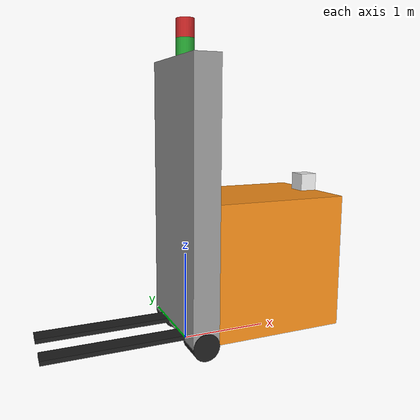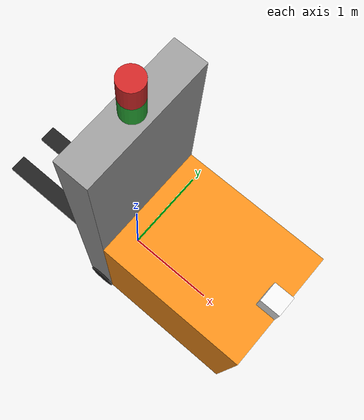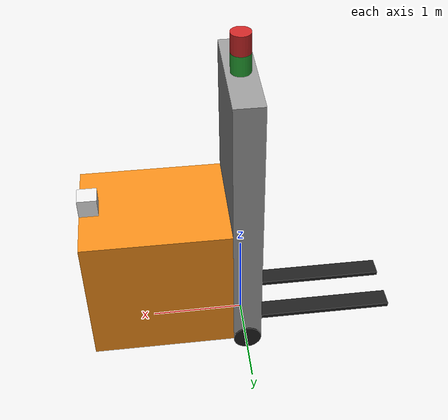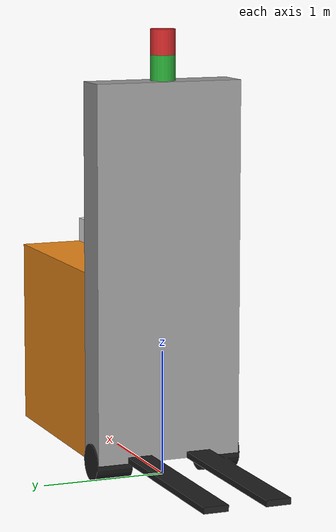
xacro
<?xml version="1.0"?>
<robot name="agv" xmlns:xacro="http://www.ros.org/wiki/xacro">

    <!-- Constants for robot dimensions -->
    <xacro:property name="PI" value="3.1415926535897931"/>
    <xacro:property name="chassis_x" value="1.5" /> <!-- length=1.5 meters -->
    <xacro:property name="chassis_y" value="1.2" /> <!-- width=1.2 meters -->
    <xacro:property name="chassis_z" value="1.5" /> <!-- height=1.5 meters-->

    <xacro:property name="mast_x" value="0.3" /> <!-- length=0.3 meters -->
    <xacro:property name="mast_z" value="3.0" /> <!-- height=3.0 meters-->

    <xacro:property name="fork_x" value="1.5" /> <!-- length=1.5 meters-->
    <xacro:property name="fork_y" value="0.2" /> <!-- width=0.2 meters-->
    <xacro:property name="fork_z" value="0.05" /> <!-- height=0.05 meters-->
    <xacro:property name="fork_y_offset" value="0.15" /> <!-- offset from center=0.15 meters-->

    <xacro:property name="wheel_rad" value="0.15" /> <!-- radius=0.15 meters-->
    <xacro:property name="wheel_len" value="0.30" /> <!-- length=0.30 meters-->

    <xacro:property name="chassis_mass" value="100" /> <!-- mass=100 kg-->
    <xacro:property name="wheel_mass" value="1" /> <!-- mass=1 kg-->

    <!-- Include other xacro files-->
    <xacro:include filename="$(find factorybot)/robot/materials.xacro" />
    <xacro:include filename="$(find factorybot)/robot/agv.gazebo.xarco" />

    <!-- Setup some useful xacro macros-->
    <xacro:macro name="visual_collision_template" params="x y z material *shape">
        <visual>
        <origin xyz="${x} ${y} ${z}" rpy="0 0 0"/>
        <geometry>
            <xacro:insert_block name="shape" />
        </geometry>
        <material name="${material}"/>
        </visual>

        <collision>
        <origin xyz="${x} ${y} ${z}" rpy="0 0 0"/>
        <geometry>
            <xacro:insert_block name="shape" />
        </geometry>
        </collision>
    </xacro:macro>
    <xacro:macro name="wheel_template" params="name x y rad length mass">
        <joint name="chassis_${name}_joint" type="continuous">
            <parent link="chassis"/>
            <child link="${name}"/>
            <origin xyz="${x} ${y} 0.0" rpy="${-PI/2} 0 0"/>
            <axis xyz="0 0 1"/>
        </joint>

        <link name="${name}">
            <xacro:visual_collision_template x="0.0" y="0.0" z="0.0" material="black">
                <cylinder radius="${rad}" length="${length}" />
            </xacro:visual_collision_template>

            <inertial>
            <origin xyz="0 0 0" rpy="0 0 0"/>
            <mass value="${mass}"/>
            <!-- Cylinder: Izz=(1/2)*m*r^2, Ixx=Iyy=(1/12)*m*(3*r^2+h^2)-->
            <inertia ixx="${(1/12)*mass*(3*pow(rad,2)+pow(length,2))}" ixy="0" ixz="0"
                    iyy="${(1/12)*mass*(3*pow(rad,2)+pow(length,2))}" iyz="0"
                    izz="${.5*mass*pow(rad,2)}" />
            </inertial>
        </link>
    </xacro:macro>

    <!-- AGV Description Starts -->
    <link name="agv_CoordSys"/>
    <joint name="base_chassis_joint" type="fixed">
        <parent link="agv_CoordSys"/>
        <child link="chassis"/>
        <origin xyz="0.0 0.0 ${wheel_rad}" rpy="0 0 0"/>
    </joint>

    <!-- AGV Chassis -->
    <link name="chassis">
        <!-- Box representing AGV body which contains battery, electronics, etc. -->
        <xacro:visual_collision_template x="0.0" y="0.0" z="${mast_z/2}" material="grey">
            <box size="${mast_x} ${chassis_y} ${mast_z}"/>
        </xacro:visual_collision_template>

        <!-- Box representing AGV mast -->
        <xacro:visual_collision_template x="${(mast_x+chassis_x)/2}" y="0.0" z="${chassis_z/2}" material="orange">
            <box size="${chassis_x} ${chassis_y} ${chassis_z}"/>
        </xacro:visual_collision_template>

        <!-- Box representing AGV forks -->
        <xacro:visual_collision_template x="${-(mast_x+fork_x)/2}" y="${fork_y_offset+fork_y/2}" z="${fork_z/2}" material="black">
            <box size="${fork_x} ${fork_y} ${fork_z}"/>
        </xacro:visual_collision_template>
        <xacro:visual_collision_template x="${-(mast_x+fork_x)/2}" y="${-(fork_y_offset+fork_y/2)}" z="${fork_z/2}" material="black">
            <box size="${fork_x} ${fork_y} ${fork_z}"/>
        </xacro:visual_collision_template>

        <inertial>
        <origin xyz="0 0 0" rpy="0 0 0"/>
        <mass value="${chassis_mass}"/>
        <inertia ixx="60" ixy="0" ixz="0"
                iyy="60" iyz="0"
                izz="60" />
        </inertial>
    </link>

    <!-- AGV Wheels -->
    <xacro:wheel_template name="wheelL" x="0" y="${(chassis_y-wheel_len)/2+.01}" rad="${wheel_rad}" length="${wheel_len}" mass="${wheel_mass}"/>
    <xacro:wheel_template name="wheelR" x="0" y="${-(chassis_y-wheel_len)/2-.01}" rad="${wheel_rad}" length="${wheel_len}" mass="${wheel_mass}"/>
    <xacro:wheel_template name="wheelC" x="${chassis_x}" y="0" rad="${wheel_rad}" length="${wheel_len}" mass="${wheel_mass}"/>

    <!-- AGV Lidar3D Sensor -->
    <joint name="chassis_lidar3D_joint" type="fixed">
        <parent link="chassis"/>
        <child link="lidar3D"/>
        <origin xyz="0.0 0.0 ${mast_z+.1}" rpy="0 0 0"/>
    </joint>
    <link name="lidar3D">
        <xacro:visual_collision_template x="0.0" y="0.0" z="0.0" material="green">
            <cylinder radius="0.1" length="0.2" />
        </xacro:visual_collision_template>
    </link>

    <!-- AGV Lidar2D Sensor -->
    <joint name="chassis_lidar2D_joint" type="fixed">
        <parent link="chassis"/>
        <child link="lidar2D"/>
        <origin xyz="0.0 0.0 ${mast_z+.3}" rpy="0 0 0"/>
    </joint>
    <link name="lidar2D">
        <xacro:visual_collision_template x="0.0" y="0.0" z="0.0" material="red">
            <cylinder radius="0.1" length="0.2" />
        </xacro:visual_collision_template>
    </link>

    <!-- AGV Camera Sensor -->
    <joint name="chassis_camera_joint" type="fixed">
        <parent link="chassis"/>
        <child link="camera"/>
        <origin xyz="${chassis_x+mast_x/2-.1} 0.0 ${chassis_z+.1}" rpy="0 0 0"/>
    </joint>
    <link name="camera">
        <xacro:visual_collision_template x="0.0" y="0.0" z="0.0" material="white">
            <box size=".2 .2 .2"/>
        </xacro:visual_collision_template>
    </link>

</robot>
